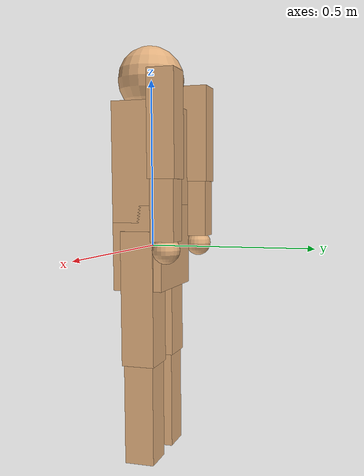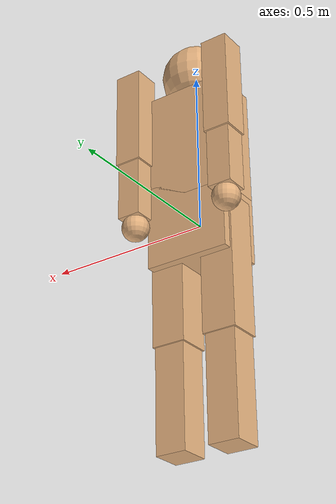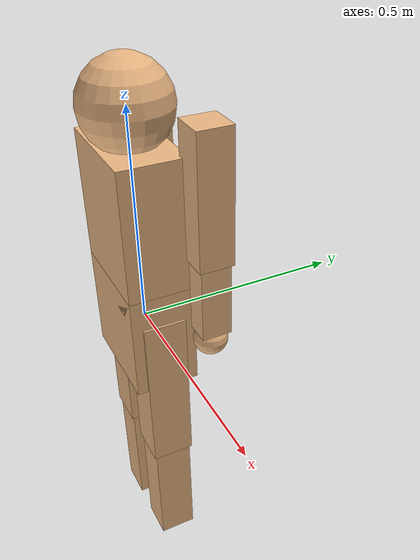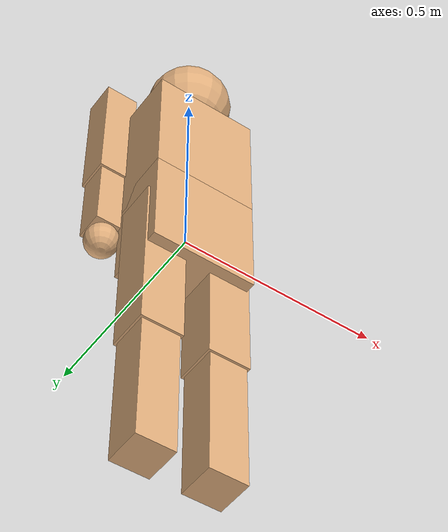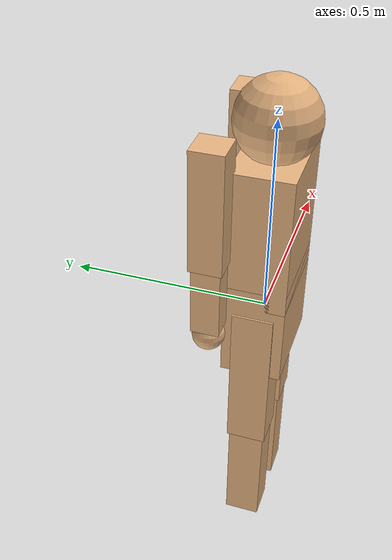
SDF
<?xml version="1.0" ?>
<sdf version="1.9">
  <model name="human">
    <!-- Base link representing the pelvis -->
    <link name="pelvis">
      <inertial>
        <mass>10</mass>
        <inertia>
          <ixx>0.5</ixx>
          <ixy>0</ixy>
          <ixz>0</ixz>
          <iyy>0.5</iyy>
          <iyz>0</iyz>
          <izz>0.5</izz>
        </inertia>
      </inertial>
      <visual name="pelvis_visual">
        <geometry>
          <box>
            <size>0.25 0.15 0.25</size>
          </box>
        </geometry>
        <material>
          <ambient>0.9 0.7 0.5 1</ambient>
          <diffuse>0.9 0.7 0.5 1</diffuse>
        </material>
      </visual>
      <collision name="pelvis_collision">
        <geometry>
          <box>
            <size>0.25 0.15 0.25</size>
          </box>
        </geometry>
      </collision>
    </link>

    <!-- Torso -->
    <link name="torso">
      <pose relative_to="pelvis">0 0 0.25 0 0 0</pose>
      <inertial>
        <mass>8</mass>
        <inertia>
          <ixx>0.3</ixx>
          <ixy>0</ixy>
          <ixz>0</ixz>
          <iyy>0.3</iyy>
          <iyz>0</iyz>
          <izz>0.2</izz>
        </inertia>
      </inertial>
      <visual name="torso_visual">
        <geometry>
          <box>
            <size>0.25 0.15 0.35</size>
          </box>
        </geometry>
        <material>
          <ambient>0.9 0.7 0.5 1</ambient>
          <diffuse>0.9 0.7 0.5 1</diffuse>
        </material>
      </visual>
      <collision name="torso_collision">
        <geometry>
          <box>
            <size>0.25 0.15 0.35</size>
          </box>
        </geometry>
      </collision>
    </link>

    <joint name="pelvis_torso" type="fixed">
      <parent>pelvis</parent>
      <child>torso</child>
    </joint>

    <!-- Head -->
    <link name="head">
      <pose relative_to="torso">0 0 0.25 0 0 0</pose>
      <inertial>
        <mass>2</mass>
        <inertia>
          <ixx>0.05</ixx>
          <ixy>0</ixy>
          <ixz>0</ixz>
          <iyy>0.05</iyy>
          <iyz>0</iyz>
          <izz>0.05</izz>
        </inertia>
      </inertial>
      <visual name="head_visual">
        <geometry>
          <sphere>
            <radius>0.1</radius>
          </sphere>
        </geometry>
        <material>
          <ambient>0.9 0.7 0.5 1</ambient>
          <diffuse>0.9 0.7 0.5 1</diffuse>
        </material>
      </visual>
      <collision name="head_collision">
        <geometry>
          <sphere>
            <radius>0.1</radius>
          </sphere>
        </geometry>
      </collision>
    </link>

    <joint name="torso_head" type="revolute">
      <parent>torso</parent>
      <child>head</child>
      <axis>
        <xyz>0 1 0</xyz>
        <limit>
          <lower>-0.5</lower>
          <upper>0.5</upper>
        </limit>
      </axis>
    </joint>

    <!-- Left Arm -->
    <link name="left_upper_arm">
      <pose relative_to="torso">0.15 0.1 0.1 0 0 0</pose>
      <inertial>
        <mass>2</mass>
        <inertia>
          <ixx>0.02</ixx>
          <ixy>0</ixy>
          <ixz>0</ixz>
          <iyy>0.02</iyy>
          <iyz>0</iyz>
          <izz>0.01</izz>
        </inertia>
      </inertial>
      <visual name="left_upper_arm_visual">
        <geometry>
          <box>
            <size>0.08 0.08 0.3</size>
          </box>
        </geometry>
        <material>
          <ambient>0.9 0.7 0.5 1</ambient>
          <diffuse>0.9 0.7 0.5 1</diffuse>
        </material>
      </visual>
      <collision name="left_upper_arm_collision">
        <geometry>
          <box>
            <size>0.08 0.08 0.3</size>
          </box>
        </geometry>
      </collision>
    </link>

    <joint name="left_shoulder" type="revolute">
      <parent>torso</parent>
      <child>left_upper_arm</child>
      <axis>
        <xyz>1 0 0</xyz>
        <limit>
          <lower>-2</lower>
          <upper>2</upper>
        </limit>
      </axis>
    </joint>

    <!-- Left Forearm -->
    <link name="left_forearm">
      <pose relative_to="left_upper_arm">0 0 -0.2 0 0 0</pose>
      <inertial>
        <mass>1.5</mass>
        <inertia>
          <ixx>0.01</ixx>
          <ixy>0</ixy>
          <ixz>0</ixz>
          <iyy>0.01</iyy>
          <iyz>0</iyz>
          <izz>0.008</izz>
        </inertia>
      </inertial>
      <visual name="left_forearm_visual">
        <geometry>
          <box>
            <size>0.07 0.07 0.25</size>
          </box>
        </geometry>
        <material>
          <ambient>0.9 0.7 0.5 1</ambient>
          <diffuse>0.9 0.7 0.5 1</diffuse>
        </material>
      </visual>
      <collision name="left_forearm_collision">
        <geometry>
          <box>
            <size>0.07 0.07 0.25</size>
          </box>
        </geometry>
      </collision>
    </link>

    <joint name="left_elbow" type="revolute">
      <parent>left_upper_arm</parent>
      <child>left_forearm</child>
      <axis>
        <xyz>1 0 0</xyz>
        <limit>
          <lower>-2</lower>
          <upper>0</upper>
        </limit>
      </axis>
    </joint>

    <!-- Left Hand (fist - closed hand) -->
    <link name="left_hand">
      <pose relative_to="left_forearm">0 0 -0.15 0 0 0</pose>
      <inertial>
        <mass>0.3</mass>
        <inertia>
          <ixx>0.001</ixx>
          <ixy>0</ixy>
          <ixz>0</ixz>
          <iyy>0.001</iyy>
          <iyz>0</iyz>
          <izz>0.001</izz>
        </inertia>
      </inertial>
      <visual name="left_hand_visual">
        <geometry>
          <sphere>
            <radius>0.04</radius>
          </sphere>
        </geometry>
        <material>
          <ambient>0.9 0.7 0.5 1</ambient>
          <diffuse>0.9 0.7 0.5 1</diffuse>
        </material>
      </visual>
      <collision name="left_hand_collision">
        <geometry>
          <sphere>
            <radius>0.04</radius>
          </sphere>
        </geometry>
      </collision>
    </link>

    <joint name="left_wrist" type="fixed">
      <parent>left_forearm</parent>
      <child>left_hand</child>
    </joint>

    <!-- Right Arm -->
    <link name="right_upper_arm">
      <pose relative_to="torso">-0.15 0.1 0.1 0 0 0</pose>
      <inertial>
        <mass>2</mass>
        <inertia>
          <ixx>0.02</ixx>
          <ixy>0</ixy>
          <ixz>0</ixz>
          <iyy>0.02</iyy>
          <iyz>0</iyz>
          <izz>0.01</izz>
        </inertia>
      </inertial>
      <visual name="right_upper_arm_visual">
        <geometry>
          <box>
            <size>0.08 0.08 0.3</size>
          </box>
        </geometry>
        <material>
          <ambient>0.9 0.7 0.5 1</ambient>
          <diffuse>0.9 0.7 0.5 1</diffuse>
        </material>
      </visual>
      <collision name="right_upper_arm_collision">
        <geometry>
          <box>
            <size>0.08 0.08 0.3</size>
          </box>
        </geometry>
      </collision>
    </link>

    <joint name="right_shoulder" type="revolute">
      <parent>torso</parent>
      <child>right_upper_arm</child>
      <axis>
        <xyz>1 0 0</xyz>
        <limit>
          <lower>-2</lower>
          <upper>2</upper>
        </limit>
      </axis>
    </joint>

    <!-- Right Forearm -->
    <link name="right_forearm">
      <pose relative_to="right_upper_arm">0 0 -0.2 0 0 0</pose>
      <inertial>
        <mass>1.5</mass>
        <inertia>
          <ixx>0.01</ixx>
          <ixy>0</ixy>
          <ixz>0</ixz>
          <iyy>0.01</iyy>
          <iyz>0</iyz>
          <izz>0.008</izz>
        </inertia>
      </inertial>
      <visual name="right_forearm_visual">
        <geometry>
          <box>
            <size>0.07 0.07 0.25</size>
          </box>
        </geometry>
        <material>
          <ambient>0.9 0.7 0.5 1</ambient>
          <diffuse>0.9 0.7 0.5 1</diffuse>
        </material>
      </visual>
      <collision name="right_forearm_collision">
        <geometry>
          <box>
            <size>0.07 0.07 0.25</size>
          </box>
        </geometry>
      </collision>
    </link>

    <joint name="right_elbow" type="revolute">
      <parent>right_upper_arm</parent>
      <child>right_forearm</child>
      <axis>
        <xyz>1 0 0</xyz>
        <limit>
          <lower>-2</lower>
          <upper>0</upper>
        </limit>
      </axis>
    </joint>

    <!-- Right Hand (fist - closed hand) -->
    <link name="right_hand">
      <pose relative_to="right_forearm">0 0 -0.15 0 0 0</pose>
      <inertial>
        <mass>0.3</mass>
        <inertia>
          <ixx>0.001</ixx>
          <ixy>0</ixy>
          <ixz>0</ixz>
          <iyy>0.001</iyy>
          <iyz>0</iyz>
          <izz>0.001</izz>
        </inertia>
      </inertial>
      <visual name="right_hand_visual">
        <geometry>
          <sphere>
            <radius>0.04</radius>
          </sphere>
        </geometry>
        <material>
          <ambient>0.9 0.7 0.5 1</ambient>
          <diffuse>0.9 0.7 0.5 1</diffuse>
        </material>
      </visual>
      <collision name="right_hand_collision">
        <geometry>
          <sphere>
            <radius>0.04</radius>
          </sphere>
        </geometry>
      </collision>
    </link>

    <joint name="right_wrist" type="fixed">
      <parent>right_forearm</parent>
      <child>right_hand</child>
    </joint>

    <!-- Left Leg -->
    <link name="left_upper_leg">
      <pose relative_to="pelvis">0.08 0 -0.15 0 0 0</pose>
      <inertial>
        <mass>4</mass>
        <inertia>
          <ixx>0.08</ixx>
          <ixy>0</ixy>
          <ixz>0</ixz>
          <iyy>0.08</iyy>
          <iyz>0</iyz>
          <izz>0.03</izz>
        </inertia>
      </inertial>
      <visual name="left_upper_leg_visual">
        <geometry>
          <box>
            <size>0.1 0.1 0.4</size>
          </box>
        </geometry>
        <material>
          <ambient>0.9 0.7 0.5 1</ambient>
          <diffuse>0.9 0.7 0.5 1</diffuse>
        </material>
      </visual>
      <collision name="left_upper_leg_collision">
        <geometry>
          <box>
            <size>0.1 0.1 0.4</size>
          </box>
        </geometry>
      </collision>
    </link>

    <joint name="left_hip" type="revolute">
      <parent>pelvis</parent>
      <child>left_upper_leg</child>
      <axis>
        <xyz>1 0 0</xyz>
        <limit>
          <lower>-1.5</lower>
          <upper>1.5</upper>
        </limit>
      </axis>
    </joint>

    <link name="left_lower_leg">
      <pose relative_to="left_upper_leg">0 0 -0.3 0 0 0</pose>
      <inertial>
        <mass>3</mass>
        <inertia>
          <ixx>0.05</ixx>
          <ixy>0</ixy>
          <ixz>0</ixz>
          <iyy>0.05</iyy>
          <iyz>0</iyz>
          <izz>0.02</izz>
        </inertia>
      </inertial>
      <visual name="left_lower_leg_visual">
        <geometry>
          <box>
            <size>0.09 0.09 0.4</size>
          </box>
        </geometry>
        <material>
          <ambient>0.9 0.7 0.5 1</ambient>
          <diffuse>0.9 0.7 0.5 1</diffuse>
        </material>
      </visual>
      <collision name="left_lower_leg_collision">
        <geometry>
          <box>
            <size>0.09 0.09 0.4</size>
          </box>
        </geometry>
      </collision>
    </link>

    <joint name="left_knee" type="revolute">
      <parent>left_upper_leg</parent>
      <child>left_lower_leg</child>
      <axis>
        <xyz>1 0 0</xyz>
        <limit>
          <lower>0</lower>
          <upper>2</upper>
        </limit>
      </axis>
    </joint>

    <!-- Right Leg -->
    <link name="right_upper_leg">
      <pose relative_to="pelvis">-0.08 0 -0.15 0 0 0</pose>
      <inertial>
        <mass>4</mass>
        <inertia>
          <ixx>0.08</ixx>
          <ixy>0</ixy>
          <ixz>0</ixz>
          <iyy>0.08</iyy>
          <iyz>0</iyz>
          <izz>0.03</izz>
        </inertia>
      </inertial>
      <visual name="right_upper_leg_visual">
        <geometry>
          <box>
            <size>0.1 0.1 0.4</size>
          </box>
        </geometry>
        <material>
          <ambient>0.9 0.7 0.5 1</ambient>
          <diffuse>0.9 0.7 0.5 1</diffuse>
        </material>
      </visual>
      <collision name="right_upper_leg_collision">
        <geometry>
          <box>
            <size>0.1 0.1 0.4</size>
          </box>
        </geometry>
      </collision>
    </link>

    <joint name="right_hip" type="revolute">
      <parent>pelvis</parent>
      <child>right_upper_leg</child>
      <axis>
        <xyz>1 0 0</xyz>
        <limit>
          <lower>-1.5</lower>
          <upper>1.5</upper>
        </limit>
      </axis>
    </joint>

    <link name="right_lower_leg">
      <pose relative_to="right_upper_leg">0 0 -0.3 0 0 0</pose>
      <inertial>
        <mass>3</mass>
        <inertia>
          <ixx>0.05</ixx>
          <ixy>0</ixy>
          <ixz>0</ixz>
          <iyy>0.05</iyy>
          <iyz>0</iyz>
          <izz>0.02</izz>
        </inertia>
      </inertial>
      <visual name="right_lower_leg_visual">
        <geometry>
          <box>
            <size>0.09 0.09 0.4</size>
          </box>
        </geometry>
        <material>
          <ambient>0.9 0.7 0.5 1</ambient>
          <diffuse>0.9 0.7 0.5 1</diffuse>
        </material>
      </visual>
      <collision name="right_lower_leg_collision">
        <geometry>
          <box>
            <size>0.09 0.09 0.4</size>
          </box>
        </geometry>
      </collision>
    </link>

    <joint name="right_knee" type="revolute">
      <parent>right_upper_leg</parent>
      <child>right_lower_leg</child>
      <axis>
        <xyz>1 0 0</xyz>
        <limit>
          <lower>0</lower>
          <upper>2</upper>
        </limit>
      </axis>
    </joint>

    <!-- Plugin to control walking animation -->
    <plugin
      filename="libIgnitionROS2CMakePlugin.so"
      name="human_animation">
    </plugin>
  </model>
</sdf>
